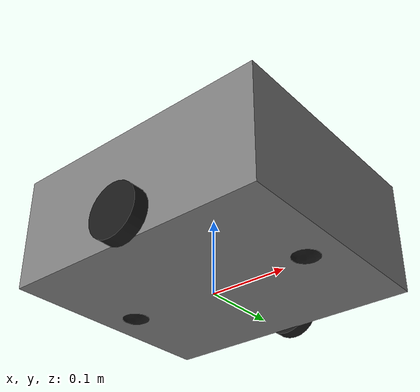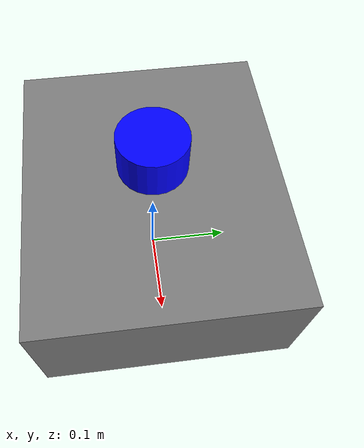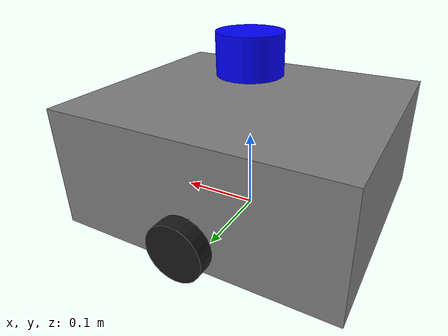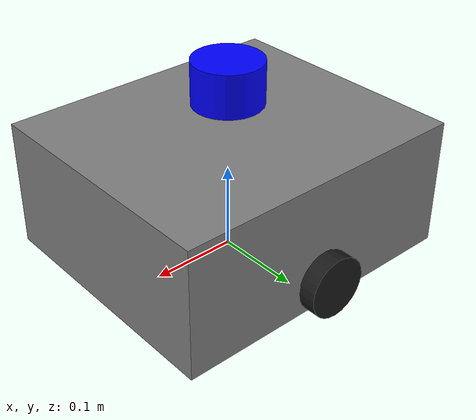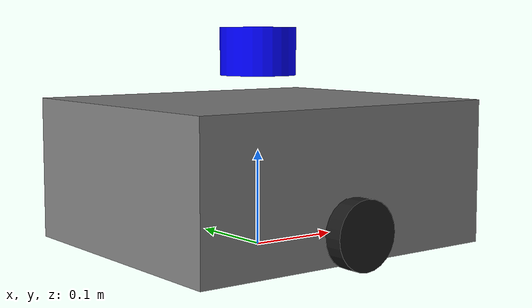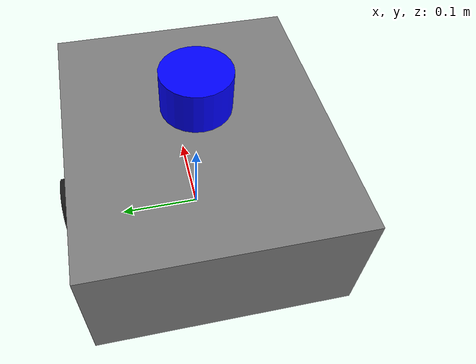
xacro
<?xml version="1.0"?>
<robot name="elevator_robot" xmlns:xacro="http://www.ros.org/wiki/xacro">

  <!-- ===== 로봇 기본 파라미터 ===== -->
  <xacro:property name="base_width"  value="0.3"/>   <!-- 본체 폭 [m] -->
  <xacro:property name="base_length" value="0.35"/>  <!-- 본체 길이 [m] -->
  <xacro:property name="base_height" value="0.15"/>  <!-- 본체 높이 [m] -->
  <xacro:property name="base_mass"   value="15.0"/>

  <xacro:property name="wheel_radius"   value="0.035"/> <!-- 바퀴 반지름 7cm/2 -->
  <xacro:property name="wheel_width"    value="0.02"/>
  <xacro:property name="wheel_mass"     value="0.5"/>
  <xacro:property name="wheel_offset_x" value="0.0"/>
  <xacro:property name="wheel_offset_y" value="0.16"/> <!-- base_width/2(0.15) + wheel_width/2(0.01) -->

  <!-- 본체 바닥과 지면 사이 여유 (본체가 바닥에 끌리지 않도록) -->
  <xacro:property name="ground_clearance" value="0.005"/>
  <!-- base_link 의 중심 z (base_footprint 기준): 본체 바닥 = ground_clearance -->
  <xacro:property name="base_z_offset" value="${base_height/2 + ground_clearance}"/>
  <!-- 바퀴 중심을 z=wheel_radius (지면 접촉) 로 두려면 base_link 기준에서 이 값 -->
  <xacro:property name="wheel_z_in_base" value="${wheel_radius - base_z_offset}"/>

  <!-- 캐스터 (볼롤러) -->
  <xacro:property name="caster_radius"   value="${wheel_radius}"/>
  <xacro:property name="caster_offset_x" value="0.13"/>
  <xacro:property name="caster_mass"     value="0.1"/>

  <!-- ===== 관성 매크로 ===== -->
  <!-- 직육면체 -->
  <xacro:macro name="box_inertia" params="m x y z">
    <inertial>
      <mass value="${m}"/>
      <inertia
        ixx="${(1.0/12.0)*m*(y*y + z*z)}" ixy="0" ixz="0"
        iyy="${(1.0/12.0)*m*(x*x + z*z)}" iyz="0"
        izz="${(1.0/12.0)*m*(x*x + y*y)}"/>
    </inertial>
  </xacro:macro>

  <!-- 원통 (회전 대칭축은 link 의 z 축) -->
  <xacro:macro name="cylinder_inertia" params="m r h">
    <inertial>
      <mass value="${m}"/>
      <inertia
        ixx="${(1.0/12.0)*m*(3*r*r + h*h)}" ixy="0" ixz="0"
        iyy="${(1.0/12.0)*m*(3*r*r + h*h)}" iyz="0"
        izz="${(1.0/2.0)*m*r*r}"/>
    </inertial>
  </xacro:macro>

  <xacro:macro name="sphere_inertia" params="m r">
    <inertial>
      <mass value="${m}"/>
      <inertia
        ixx="${(2.0/5.0)*m*r*r}" ixy="0" ixz="0"
        iyy="${(2.0/5.0)*m*r*r}" iyz="0"
        izz="${(2.0/5.0)*m*r*r}"/>
    </inertial>
  </xacro:macro>

  <!-- ===== 베이스 ===== -->
  <link name="base_footprint"/>

  <joint name="base_joint" type="fixed">
    <parent link="base_footprint"/>
    <child link="base_link"/>
    <origin xyz="0 0 ${base_z_offset}" rpy="0 0 0"/>
  </joint>

  <link name="base_link">
    <visual>
      <geometry>
        <box size="${base_length} ${base_width} ${base_height}"/>
      </geometry>
      <material name="gray">
        <color rgba="0.5 0.5 0.5 1.0"/>
      </material>
    </visual>
    <collision>
      <geometry>
        <box size="${base_length} ${base_width} ${base_height}"/>
      </geometry>
    </collision>
    <xacro:box_inertia m="${base_mass}" x="${base_length}" y="${base_width}" z="${base_height}"/>
  </link>

  <!-- ===== 왼쪽 바퀴 ===== -->
  <joint name="left_wheel_joint" type="continuous">
    <parent link="base_link"/>
    <child link="left_wheel"/>
    <origin xyz="${wheel_offset_x} ${wheel_offset_y} ${wheel_z_in_base}" rpy="-1.5708 0 0"/>
    <axis xyz="0 0 1"/>
    <dynamics damping="0.01" friction="0.001"/>
  </joint>

  <link name="left_wheel">
    <visual>
      <geometry>
        <cylinder radius="${wheel_radius}" length="${wheel_width}"/>
      </geometry>
      <material name="black">
        <color rgba="0.1 0.1 0.1 1.0"/>
      </material>
    </visual>
    <collision>
      <geometry>
        <cylinder radius="${wheel_radius}" length="${wheel_width}"/>
      </geometry>
    </collision>
    <xacro:cylinder_inertia m="${wheel_mass}" r="${wheel_radius}" h="${wheel_width}"/>
  </link>

  <!-- ===== 오른쪽 바퀴 ===== -->
  <joint name="right_wheel_joint" type="continuous">
    <parent link="base_link"/>
    <child link="right_wheel"/>
    <origin xyz="${wheel_offset_x} ${-wheel_offset_y} ${wheel_z_in_base}" rpy="-1.5708 0 0"/>
    <axis xyz="0 0 1"/>
    <dynamics damping="0.01" friction="0.001"/>
  </joint>

  <link name="right_wheel">
    <visual>
      <geometry>
        <cylinder radius="${wheel_radius}" length="${wheel_width}"/>
      </geometry>
      <material name="black"/>
    </visual>
    <collision>
      <geometry>
        <cylinder radius="${wheel_radius}" length="${wheel_width}"/>
      </geometry>
    </collision>
    <xacro:cylinder_inertia m="${wheel_mass}" r="${wheel_radius}" h="${wheel_width}"/>
  </link>

  <!-- ===== 캐스터 (볼롤러 2개: 앞/뒤) ===== -->
  <xacro:macro name="caster_ball" params="name x">
    <joint name="${name}_joint" type="fixed">
      <parent link="base_link"/>
      <child link="${name}_link"/>
      <origin xyz="${x} 0 ${wheel_z_in_base}" rpy="0 0 0"/>
    </joint>
    <link name="${name}_link">
      <visual>
        <geometry>
          <sphere radius="${caster_radius}"/>
        </geometry>
        <material name="black"/>
      </visual>
      <collision>
        <geometry>
          <sphere radius="${caster_radius}"/>
        </geometry>
      </collision>
      <xacro:sphere_inertia m="${caster_mass}" r="${caster_radius}"/>
    </link>
  </xacro:macro>

  <xacro:caster_ball name="caster_front" x="${caster_offset_x}"/>
  <xacro:caster_ball name="caster_back"  x="${-caster_offset_x}"/>

  <!-- ===== LiDAR 마운트 ===== -->
  <joint name="lidar_joint" type="fixed">
    <parent link="base_link"/>
    <child link="laser"/>
    <origin xyz="0.0 0.0 ${base_height/2 + 0.05}" rpy="0 0 0"/>
  </joint>

  <link name="laser">
    <visual>
      <geometry>
        <cylinder radius="0.04" length="0.05"/>
      </geometry>
      <material name="blue">
        <color rgba="0.0 0.0 1.0 1.0"/>
      </material>
    </visual>
    <collision>
      <geometry>
        <cylinder radius="0.04" length="0.05"/>
      </geometry>
    </collision>
    <xacro:cylinder_inertia m="0.1" r="0.04" h="0.05"/>
  </link>

  <!-- ===== Gazebo material/friction ===== -->

  <!-- 바퀴 마찰 (없으면 헛바퀴) -->
  <gazebo reference="left_wheel">
    <mu1>1.0</mu1>
    <mu2>1.0</mu2>
    <kp>1000000.0</kp>
    <kd>100.0</kd>
    <minDepth>0.001</minDepth>
    <maxVel>1.0</maxVel>
    <fdir1>1 0 0</fdir1>
    <material>Gazebo/Black</material>
  </gazebo>

  <gazebo reference="right_wheel">
    <mu1>1.0</mu1>
    <mu2>1.0</mu2>
    <kp>1000000.0</kp>
    <kd>100.0</kd>
    <minDepth>0.001</minDepth>
    <maxVel>1.0</maxVel>
    <fdir1>1 0 0</fdir1>
    <material>Gazebo/Black</material>
  </gazebo>

  <!-- 캐스터(볼롤러): 마찰 0 으로 자유롭게 미끄러짐 -->
  <gazebo reference="caster_front_link">
    <mu1>0.0</mu1>
    <mu2>0.0</mu2>
    <kp>1000000.0</kp>
    <kd>100.0</kd>
    <minDepth>0.001</minDepth>
    <maxVel>1.0</maxVel>
    <material>Gazebo/Black</material>
  </gazebo>

  <gazebo reference="caster_back_link">
    <mu1>0.0</mu1>
    <mu2>0.0</mu2>
    <kp>1000000.0</kp>
    <kd>100.0</kd>
    <minDepth>0.001</minDepth>
    <maxVel>1.0</maxVel>
    <material>Gazebo/Black</material>
  </gazebo>

  <!-- 본체 -->
  <gazebo reference="base_link">
    <mu1>0.1</mu1>
    <mu2>0.1</mu2>
    <material>Gazebo/Grey</material>
  </gazebo>

  <gazebo reference="laser">
    <material>Gazebo/Blue</material>
  </gazebo>

  <!-- ===== Gazebo 플러그인 ===== -->

  <!-- 차동 구동 -->
  <gazebo>
    <plugin name="diff_drive" filename="libgazebo_ros_diff_drive.so">
      <ros>
        <namespace>/</namespace>
      </ros>
      <update_rate>30</update_rate>
      <left_joint>left_wheel_joint</left_joint>
      <right_joint>right_wheel_joint</right_joint>
      <wheel_separation>${wheel_offset_y * 2}</wheel_separation>
      <wheel_diameter>${wheel_radius * 2}</wheel_diameter>
      <max_wheel_torque>20.0</max_wheel_torque>
      <max_wheel_acceleration>5.0</max_wheel_acceleration>
      <publish_odom>true</publish_odom>
      <publish_odom_tf>true</publish_odom_tf>
      <publish_wheel_tf>true</publish_wheel_tf>
      <odometry_frame>odom</odometry_frame>
      <robot_base_frame>base_footprint</robot_base_frame>
    </plugin>
  </gazebo>

  <!-- 조인트 상태 publish (RViz 에서 바퀴 회전 보이게) -->
  <gazebo>
    <plugin name="joint_state_publisher" filename="libgazebo_ros_joint_state_publisher.so">
      <ros>
        <namespace>/</namespace>
      </ros>
      <update_rate>30</update_rate>
      <joint_name>left_wheel_joint</joint_name>
      <joint_name>right_wheel_joint</joint_name>
    </plugin>
  </gazebo>

  <!-- LiDAR 센서 (RPLiDAR A1 근사: 360도, 8m) -->
  <gazebo reference="laser">
    <sensor name="lidar" type="ray">
      <always_on>true</always_on>
      <visualize>true</visualize>
      <update_rate>10</update_rate>
      <ray>
        <scan>
          <horizontal>
            <samples>360</samples>
            <resolution>1</resolution>
            <min_angle>-3.14159</min_angle>
            <max_angle>3.14159</max_angle>
          </horizontal>
        </scan>
        <range>
          <min>0.15</min>
          <max>8.0</max>
          <resolution>0.01</resolution>
        </range>
        <noise>
          <type>gaussian</type>
          <mean>0.0</mean>
          <stddev>0.01</stddev>
        </noise>
      </ray>
      <plugin name="lidar_plugin" filename="libgazebo_ros_ray_sensor.so">
        <ros>
          <remapping>~/out:=scan</remapping>
        </ros>
        <output_type>sensor_msgs/LaserScan</output_type>
        <frame_name>laser</frame_name>
      </plugin>
    </sensor>
  </gazebo>

</robot>
